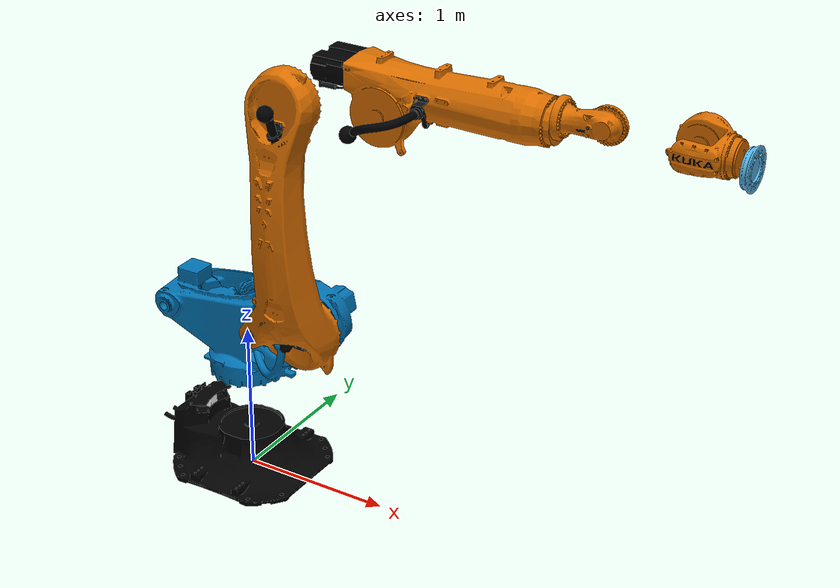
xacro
<?xml version="1.0"?>
<robot name="kuka_kr10" xmlns:xacro="http://wiki.ros.org/xacro">
    <xacro:include filename="$(find kuka_agilus_support)/urdf/kr10_r1100_sixx_macro.xacro"/>
    <xacro:include filename="$(find kuka_agilus_support)/urdf/kr_agilus_ros2_control_macro.xacro"/>
    <!-- Read additional arguments  -->
    <xacro:arg name="driver_version" default="rsi_only"/>
    <xacro:arg name="mode" default="hardware"/>
    <xacro:arg name="use_gpio" default="false"/>
    <xacro:arg name="async_scheduling_policy" default="detached"/>
    <xacro:arg name="roundtrip_time" default="0"/>
    <xacro:arg name="client_ip" default="0.0.0.0"/>
    <xacro:arg name="client_port" default="59152"/>
    <xacro:arg name="mxa_client_port" default="1337"/>
    <xacro:arg name="controller_ip" default="0.0.0.0"/>
    <xacro:arg name="verify_robot_model" default="true"/>
    <xacro:arg name="prefix" default=""/>
    <xacro:arg name="is_async" default="false"/>
    <xacro:arg name="async_thread_priority" default="69"/>
    <xacro:arg name="async_affinity" default="[]"/>
    <xacro:arg name="x" default="0"/>
    <xacro:arg name="y" default="0"/>
    <xacro:arg name="z" default="0"/>
    <xacro:arg name="roll" default="0"/>
    <xacro:arg name="pitch" default="0"/>
    <xacro:arg name="yaw" default="0"/>
    <xacro:arg name="rsi_xml_config_file" default=""/>
    <xacro:kuka_agilus_ros2_control name="$(arg prefix)kr10_r1100_sixx" driver_version="$(arg driver_version)" client_ip="$(arg client_ip)" client_port="$(arg client_port)" mxa_client_port="$(arg mxa_client_port)" controller_ip="$(arg controller_ip)" prefix="$(arg prefix)" mode="$(arg mode)" use_gpio="$(arg use_gpio)" roundtrip_time="$(arg roundtrip_time)" verify_robot_model="$(arg verify_robot_model)" rsi_xml_config_file="$(arg rsi_xml_config_file)" is_async="$(arg is_async)" async_scheduling_policy="$(arg async_scheduling_policy)" async_thread_priority="$(arg async_thread_priority)" async_affinity="$(arg async_affinity)">
        <ext_axes_ros2_control_joints/>
    </xacro:kuka_agilus_ros2_control>
    <!-- world link -->
    <link name="world"/>
    <!-- robot links, joints -->
    <xacro:kuka_kr10_r1100_sixx_robot prefix="$(arg prefix)" package_name="kuka_agilus_support"/>
    <!-- default world - base_link joint -->
    <joint name="$(arg prefix)world-base_link" type="fixed">
        <parent link="world"/>
        <child link="$(arg prefix)base_link"/>
        <origin xyz="$(arg x) $(arg y) $(arg z)" rpy="$(arg roll) $(arg pitch) $(arg yaw)"/>
    </joint>
</robot>

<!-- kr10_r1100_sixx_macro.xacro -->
<robot xmlns:xacro="http://wiki.ros.org/xacro">
  <xacro:include filename="$(find kuka_resources)/urdf/common_constants.xacro"/>
  <xacro:include filename="$(find kuka_resources)/urdf/common_materials.xacro"/>
  <xacro:macro name="kuka_kr10_r1100_sixx_robot" params="prefix package_name">
    <link name="${prefix}base"/>
    <link name="${prefix}base_link">
      <visual>
        <origin xyz="0 0 0" rpy="0 0 0"/>
        <geometry>
          <mesh filename="package://${package_name}/meshes/kr10_r1100_sixx/visual/base_link.stl"/>
        </geometry>
        <xacro:material_kuka_black/>
      </visual>
      <collision>
        <origin xyz="0 0 0" rpy="0 0 0"/>
        <geometry>
          <mesh filename="package://${package_name}/meshes/kr10_r1100_sixx/collision/base_link.stl"/>
        </geometry>
      </collision>
    </link>
    <link name="${prefix}flange"/>
    <link name="${prefix}link_1">
      <visual>
        <origin xyz="0 0 0" rpy="0 0 0"/>
        <geometry>
          <mesh filename="package://${package_name}/meshes/kr10_r1100_sixx/visual/link_1.stl"/>
        </geometry>
        <xacro:material_kuka_orange/>
      </visual>
      <collision>
        <origin xyz="0 0 0" rpy="0 0 0"/>
        <geometry>
          <mesh filename="package://${package_name}/meshes/kr10_r1100_sixx/collision/link_1.stl"/>
        </geometry>
      </collision>
    </link>
    <link name="${prefix}link_2">
      <visual>
        <origin xyz="0 0 0" rpy="0 0 0"/>
        <geometry>
          <mesh filename="package://${package_name}/meshes/kr10_r1100_sixx/visual/link_2.stl"/>
        </geometry>
        <xacro:material_kuka_orange/>
      </visual>
      <collision>
        <origin xyz="0 0 0" rpy="0 0 0"/>
        <geometry>
          <mesh filename="package://${package_name}/meshes/kr10_r1100_sixx/collision/link_2.stl"/>
        </geometry>
      </collision>
    </link>
    <link name="${prefix}link_3">
      <visual>
        <origin xyz="0 0 0" rpy="0 0 0"/>
        <geometry>
          <mesh filename="package://${package_name}/meshes/kr10_r1100_sixx/visual/link_3.stl"/>
        </geometry>
        <xacro:material_kuka_orange/>
      </visual>
      <collision>
        <origin xyz="0 0 0" rpy="0 0 0"/>
        <geometry>
          <mesh filename="package://${package_name}/meshes/kr10_r1100_sixx/collision/link_3.stl"/>
        </geometry>
      </collision>
    </link>
    <link name="${prefix}link_4">
      <visual>
        <origin xyz="0 0 0" rpy="0 0 0"/>
        <geometry>
          <mesh filename="package://${package_name}/meshes/kr10_r1100_sixx/visual/link_4.stl"/>
        </geometry>
        <xacro:material_kuka_orange/>
      </visual>
      <collision>
        <origin xyz="0 0 0" rpy="0 0 0"/>
        <geometry>
          <mesh filename="package://${package_name}/meshes/kr10_r1100_sixx/collision/link_4.stl"/>
        </geometry>
      </collision>
    </link>
    <link name="${prefix}link_5">
      <visual>
        <origin xyz="0 0 0" rpy="0 0 0"/>
        <geometry>
          <mesh filename="package://${package_name}/meshes/kr10_r1100_sixx/visual/link_5.stl"/>
        </geometry>
        <xacro:material_kuka_orange/>
      </visual>
      <collision>
        <origin xyz="0 0 0" rpy="0 0 0"/>
        <geometry>
          <mesh filename="package://${package_name}/meshes/kr10_r1100_sixx/collision/link_5.stl"/>
        </geometry>
      </collision>
    </link>
    <link name="${prefix}link_6">
      <visual>
        <origin xyz="0 0 0" rpy="0 0 0"/>
        <geometry>
          <mesh filename="package://${package_name}/meshes/kr10_r1100_sixx/visual/link_6.stl"/>
        </geometry>
        <xacro:material_kuka_pedestal/>
      </visual>
      <collision>
        <origin xyz="0 0 0" rpy="0 0 0"/>
        <geometry>
          <mesh filename="package://${package_name}/meshes/kr10_r1100_sixx/collision/link_6.stl"/>
        </geometry>
      </collision>
    </link>
    <link name="${prefix}tool0"/>
    <joint name="${prefix}base_link-base" type="fixed">
      <child link="${prefix}base"/>
      <parent link="${prefix}base_link"/>
    </joint>
    <joint name="${prefix}joint_1" type="revolute">
      <origin xyz="0 0 0.400" rpy="0 0 0"/>
      <parent link="${prefix}base_link"/>
      <child link="${prefix}link_1"/>
      <axis xyz="0 0 -1"/>
      <limit effort="0" lower="${radians(-170)}" upper="${radians(170)}" velocity="${radians(300)}"/>
    </joint>
    <joint name="${prefix}joint_2" type="revolute">
      <origin xyz="0.025 0 0" rpy="0 0 0"/>
      <parent link="${prefix}link_1"/>
      <child link="${prefix}link_2"/>
      <axis xyz="0 1 0"/>
      <limit effort="0" lower="${radians(-190)}" upper="${radians(45)}" velocity="${radians(225)}"/>
    </joint>
    <joint name="${prefix}joint_3" type="revolute">
      <origin xyz="0.560 0 0" rpy="0 0 0"/>
      <parent link="${prefix}link_2"/>
      <child link="${prefix}link_3"/>
      <axis xyz="0 1 0"/>
      <limit effort="0" lower="${radians(-120)}" upper="${radians(156)}" velocity="${radians(225)}"/>
    </joint>
    <joint name="${prefix}joint_4" type="revolute">
      <origin xyz="0 0 0.035" rpy="0 0 0"/>
      <parent link="${prefix}link_3"/>
      <child link="${prefix}link_4"/>
      <axis xyz="-1 0 0"/>
      <limit effort="0" lower="${radians(-185)}" upper="${radians(185)}" velocity="${radians(381)}"/>
    </joint>
    <joint name="${prefix}joint_5" type="revolute">
      <origin xyz="0.515 0 0" rpy="0 0 0"/>
      <parent link="${prefix}link_4"/>
      <child link="${prefix}link_5"/>
      <axis xyz="0 1 0"/>
      <limit effort="0" lower="${radians(-120)}" upper="${radians(120)}" velocity="${radians(311)}"/>
    </joint>
    <joint name="${prefix}joint_6" type="revolute">
      <origin xyz="0.080 0 0" rpy="0 0 0"/>
      <parent link="${prefix}link_5"/>
      <child link="${prefix}link_6"/>
      <axis xyz="-1 0 0"/>
      <limit effort="0" lower="${radians(-350)}" upper="${radians(350)}" velocity="${radians(492)}"/>
    </joint>
    <joint name="${prefix}link6-flange" type="fixed">
      <parent link="${prefix}link_6"/>
      <child link="${prefix}flange"/>
      <origin xyz="0 0 0" rpy="0 0 0"/>
    </joint>
    <joint name="${prefix}link6-tool0" type="fixed">
      <parent link="${prefix}link_6"/>
      <child link="${prefix}tool0"/>
      <origin xyz="0 0 0" rpy="0 ${radians(90)} 0"/>
    </joint>
  </xacro:macro>
</robot>
